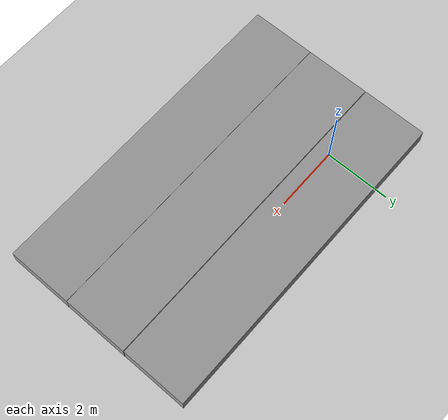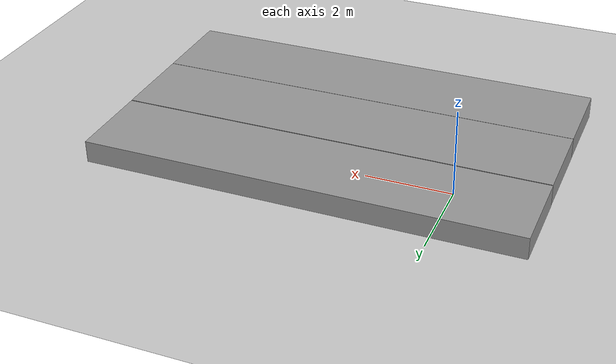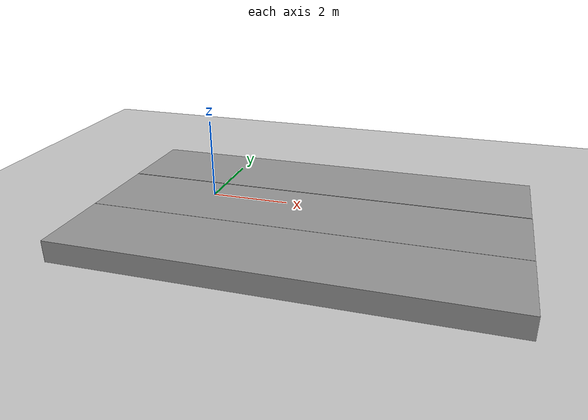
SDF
<sdf version="1.6">
 <world name="default">
  <light name="sun" type="directional">
   <pose>0 0 10 0 -0 0</pose>
   <diffuse>0.8 0.8 0.8 1</diffuse>
   <specular>0.2 0.2 0.2 1</specular>
   <attenuation>
    <range>1000</range>
    <constant>0.9</constant>
    <linear>0.01</linear>
    <quadratic>0.001</quadratic>
   </attenuation>
   <direction>-0.5 0.1 -0.9</direction>
  </light>
  <model name="ground_plane">
   <static>1</static>
   <link name="link">
    <collision name="collision">
     <geometry><plane><normal>0 0 1</normal><size>100 100</size></plane></geometry>
     <surface>
      <contact><collide_bitmask>65535</collide_bitmask></contact>
      <friction><ode><mu>100</mu><mu2>50</mu2></ode></friction>
     </surface>
    </collision>
    <visual name="visual">
     <cast_shadows>0</cast_shadows>
     <geometry><plane><normal>0 0 1</normal><size>100 100</size></plane></geometry>
     <material>
      <script><uri>file://media/materials/scripts/gazebo.material</uri><name>Gazebo/Grey</name></script>
     </material>
    </visual>
   </link>
  </model>
  <gravity>0 0 -9.8</gravity>
  <magnetic_field>6e-06 2.3e-05 -4.2e-05</magnetic_field>
  <atmosphere type="adiabatic"/>
  <physics name="default_physics" default="0" type="ode">
   <max_step_size>0.001</max_step_size>
   <real_time_factor>1</real_time_factor>
   <real_time_update_rate>1000</real_time_update_rate>
  </physics>
  <scene><ambient>0.4 0.4 0.4 1</ambient><background>0.7 0.7 0.7 1</background><shadows>1</shadows></scene>
  <audio><device>default</device></audio>
  <spherical_coordinates>
   <surface_model>EARTH_WGS84</surface_model>
   <latitude_deg>0</latitude_deg>
   <longitude_deg>0</longitude_deg>
   <elevation>0</elevation>
   <heading_deg>0</heading_deg>
  </spherical_coordinates>
  <model name="grassrow">
   <link name="link_0">
    <inertial>
     <mass>1</mass>
     <inertia>
      <ixx>0.166667</ixx>
      <ixy>0</ixy>
      <ixz>0</ixz>
      <iyy>0.166667</iyy>
      <iyz>0</iyz>
      <izz>0.166667</izz>
     </inertia>
    </inertial>
    <visual name="visual">
     <geometry><box><size>10 2 1</size></box></geometry>
     <material>
      <lighting>1</lighting>
      <script><uri>file://media/materials/scripts/gazebo.material</uri><name>Gazebo/Grey</name></script>
      <emissive>0 0 0 1</emissive>
      <shader type="vertex"><normal_map>__default__</normal_map></shader>
      <ambient>0.3 0.3 0.3 1</ambient>
      <diffuse>0.7 0.7 0.7 1</diffuse>
      <specular>0.01 0.01 0.01 1</specular>
     </material>
    </visual>
    <collision name="collision">
     <pose>0 0 -0.5 0 -0 0</pose>
     <geometry><box><size>10 2 0.01</size></box></geometry>
     <surface>
      <friction>
       <ode><mu>1</mu><mu2>1</mu2><fdir1>0 0 0</fdir1><slip1>0</slip1><slip2>0</slip2></ode>
       <torsional>
        <coefficient>1</coefficient>
        <patch_radius>0</patch_radius>
        <surface_radius>0</surface_radius>
        <use_patch_radius>1</use_patch_radius>
        <ode><slip>0</slip></ode>
       </torsional>
      </friction>
      <bounce><restitution_coefficient>0</restitution_coefficient><threshold>1e+06</threshold></bounce>
      <contact>
       <collide_without_contact>0</collide_without_contact>
       <collide_without_contact_bitmask>1</collide_without_contact_bitmask>
       <collide_bitmask>1</collide_bitmask>
       <ode>
        <soft_cfm>0</soft_cfm>
        <soft_erp>0.2</soft_erp>
        <kp>1e+13</kp>
        <kd>1</kd>
        <max_vel>0.01</max_vel>
        <min_depth>0</min_depth>
       </ode>
       <bullet>
        <split_impulse>1</split_impulse>
        <split_impulse_penetration_threshold>-0.01</split_impulse_penetration_threshold>
        <soft_cfm>0</soft_cfm>
        <soft_erp>0.2</soft_erp>
        <kp>1e+13</kp>
        <kd>1</kd>
       </bullet>
      </contact>
     </surface>
    </collision>
   </link>
   <static>1</static>
   <plugin name="grassrow" filename="libgrassrow.so"><use_ros>0</use_ros></plugin>
   <pose>2.97297 -1.3528 0 0 -0 0</pose>
  </model>
  <model name="grassrow_0">
   <link name="link_0">
    <inertial>
     <mass>1</mass>
     <inertia>
      <ixx>0.166667</ixx>
      <ixy>0</ixy>
      <ixz>0</ixz>
      <iyy>0.166667</iyy>
      <iyz>0</iyz>
      <izz>0.166667</izz>
     </inertia>
    </inertial>
    <visual name="visual">
     <geometry><box><size>10 2 1</size></box></geometry>
     <material>
      <lighting>1</lighting>
      <script><uri>file://media/materials/scripts/gazebo.material</uri><name>Gazebo/Grey</name></script>
      <emissive>0 0 0 1</emissive>
      <shader type="vertex"><normal_map>__default__</normal_map></shader>
      <ambient>0.3 0.3 0.3 1</ambient>
      <diffuse>0.7 0.7 0.7 1</diffuse>
      <specular>0.01 0.01 0.01 1</specular>
     </material>
    </visual>
    <collision name="collision">
     <pose>0 0 -0.5 0 -0 0</pose>
     <geometry><box><size>10 2 0.01</size></box></geometry>
     <surface>
      <friction>
       <ode><mu>1</mu><mu2>1</mu2><fdir1>0 0 0</fdir1><slip1>0</slip1><slip2>0</slip2></ode>
       <torsional>
        <coefficient>1</coefficient>
        <patch_radius>0</patch_radius>
        <surface_radius>0</surface_radius>
        <use_patch_radius>1</use_patch_radius>
        <ode><slip>0</slip></ode>
       </torsional>
      </friction>
      <bounce><restitution_coefficient>0</restitution_coefficient><threshold>1e+06</threshold></bounce>
      <contact>
       <collide_without_contact>0</collide_without_contact>
       <collide_without_contact_bitmask>1</collide_without_contact_bitmask>
       <collide_bitmask>1</collide_bitmask>
       <ode>
        <soft_cfm>0</soft_cfm>
        <soft_erp>0.2</soft_erp>
        <kp>1e+13</kp>
        <kd>1</kd>
        <max_vel>0.01</max_vel>
        <min_depth>0</min_depth>
       </ode>
       <bullet>
        <split_impulse>1</split_impulse>
        <split_impulse_penetration_threshold>-0.01</split_impulse_penetration_threshold>
        <soft_cfm>0</soft_cfm>
        <soft_erp>0.2</soft_erp>
        <kp>1e+13</kp>
        <kd>1</kd>
       </bullet>
      </contact>
     </surface>
    </collision>
   </link>
   <static>1</static>
   <plugin name="grassrow" filename="libgrassrow.so"><use_ros>0</use_ros></plugin>
   <pose>2.97504 -3.35836 0 0 -0 0</pose>
  </model>
  <model name="grassrow_1">
   <link name="link_0">
    <inertial>
     <mass>1</mass>
     <inertia>
      <ixx>0.166667</ixx>
      <ixy>0</ixy>
      <ixz>0</ixz>
      <iyy>0.166667</iyy>
      <iyz>0</iyz>
      <izz>0.166667</izz>
     </inertia>
    </inertial>
    <visual name="visual">
     <geometry><box><size>10 2 1</size></box></geometry>
     <material>
      <lighting>1</lighting>
      <script><uri>file://media/materials/scripts/gazebo.material</uri><name>Gazebo/Grey</name></script>
      <emissive>0 0 0 1</emissive>
      <shader type="vertex"><normal_map>__default__</normal_map></shader>
      <ambient>0.3 0.3 0.3 1</ambient>
      <diffuse>0.7 0.7 0.7 1</diffuse>
      <specular>0.01 0.01 0.01 1</specular>
     </material>
    </visual>
    <collision name="collision">
     <pose>0 0 -0.5 0 -0 0</pose>
     <geometry><box><size>10 2 0.01</size></box></geometry>
     <surface>
      <friction>
       <ode><mu>1</mu><mu2>1</mu2><fdir1>0 0 0</fdir1><slip1>0</slip1><slip2>0</slip2></ode>
       <torsional>
        <coefficient>1</coefficient>
        <patch_radius>0</patch_radius>
        <surface_radius>0</surface_radius>
        <use_patch_radius>1</use_patch_radius>
        <ode><slip>0</slip></ode>
       </torsional>
      </friction>
      <bounce><restitution_coefficient>0</restitution_coefficient><threshold>1e+06</threshold></bounce>
      <contact>
       <collide_without_contact>0</collide_without_contact>
       <collide_without_contact_bitmask>1</collide_without_contact_bitmask>
       <collide_bitmask>1</collide_bitmask>
       <ode>
        <soft_cfm>0</soft_cfm>
        <soft_erp>0.2</soft_erp>
        <kp>1e+13</kp>
        <kd>1</kd>
        <max_vel>0.01</max_vel>
        <min_depth>0</min_depth>
       </ode>
       <bullet>
        <split_impulse>1</split_impulse>
        <split_impulse_penetration_threshold>-0.01</split_impulse_penetration_threshold>
        <soft_cfm>0</soft_cfm>
        <soft_erp>0.2</soft_erp>
        <kp>1e+13</kp>
        <kd>1</kd>
       </bullet>
      </contact>
     </surface>
    </collision>
   </link>
   <static>1</static>
   <plugin name="grassrow" filename="libgrassrow.so"><use_ros>0</use_ros></plugin>
   <pose>2.96854 0.670521 0 0 -0 0</pose>
  </model>
 </world>
</sdf>
